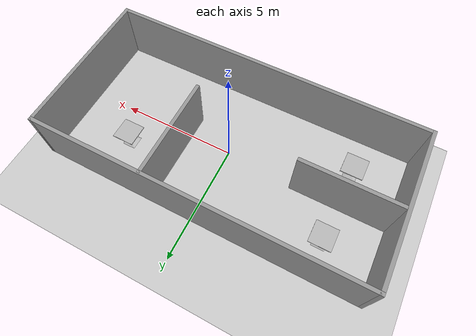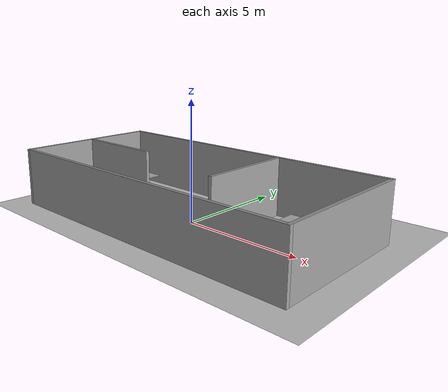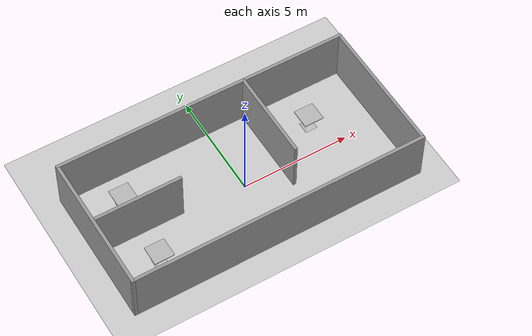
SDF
<sdf version="1.6">
 <world name="default">
  <light name="sun" type="directional">
   <pose>0 0 10 0 -0 0</pose>
   <diffuse>0.8 0.8 0.8 1</diffuse>
   <specular>0.2 0.2 0.2 1</specular>
   <attenuation>
    <range>1000</range>
    <constant>0.9</constant>
    <linear>0.01</linear>
    <quadratic>0.001</quadratic>
   </attenuation>
   <direction>-0.5 0.1 -0.9</direction>
  </light>
  <model name="ground_plane">
   <static>1</static>
   <link name="link">
    <collision name="collision">
     <geometry><plane><normal>0 0 1</normal><size>100 100</size></plane></geometry>
     <surface>
      <contact><collide_bitmask>65535</collide_bitmask></contact>
      <friction><ode><mu>100</mu><mu2>50</mu2></ode></friction>
     </surface>
    </collision>
    <visual name="visual">
     <cast_shadows>0</cast_shadows>
     <geometry><plane><normal>0 0 1</normal><size>100 100</size></plane></geometry>
     <material>
      <script><uri>file://media/materials/scripts/gazebo.material</uri><name>Gazebo/Grey</name></script>
     </material>
    </visual>
   </link>
  </model>
  <gravity>0 0 -9.8</gravity>
  <magnetic_field>6e-06 2.3e-05 -4.2e-05</magnetic_field>
  <atmosphere type="adiabatic"/>
  <physics name="default_physics" default="0" type="ode">
   <max_step_size>0.001</max_step_size>
   <real_time_factor>1</real_time_factor>
   <real_time_update_rate>1000</real_time_update_rate>
  </physics>
  <scene><ambient>0.4 0.4 0.4 1</ambient><background>0.7 0.7 0.7 1</background><shadows>1</shadows></scene>
  <spherical_coordinates>
   <surface_model>EARTH_WGS84</surface_model>
   <latitude_deg>0</latitude_deg>
   <longitude_deg>0</longitude_deg>
   <elevation>0</elevation>
   <heading_deg>0</heading_deg>
  </spherical_coordinates>
  <model name="simple_building">
   <pose>-0.126408 0.073241 0 0 -0 0</pose>
   <link name="Wall_0">
    <collision name="Wall_0_Collision">
     <geometry><box><size>13.75 0.15 2.5</size></box></geometry>
     <pose>0 0 1.25 0 -0 0</pose>
    </collision>
    <visual name="Wall_0_Visual">
     <pose>0 0 1.25 0 -0 0</pose>
     <geometry><box><size>13.75 0.15 2.5</size></box></geometry>
     <material>
      <script><uri>file://media/materials/scripts/gazebo.material</uri><name>Gazebo/Grey</name></script>
      <ambient>1 1 1 1</ambient>
     </material>
     <meta><layer>0</layer></meta>
    </visual>
    <pose>0 3.175 0 0 -0 0</pose>
   </link>
   <link name="Wall_1">
    <collision name="Wall_1_Collision">
     <geometry><box><size>6.5 0.15 2.5</size></box></geometry>
     <pose>0 0 1.25 0 -0 0</pose>
    </collision>
    <visual name="Wall_1_Visual">
     <pose>0 0 1.25 0 -0 0</pose>
     <geometry><box><size>6.5 0.15 2.5</size></box></geometry>
     <material>
      <script><uri>file://media/materials/scripts/gazebo.material</uri><name>Gazebo/Grey</name></script>
      <ambient>1 1 1 1</ambient>
     </material>
     <meta><layer>0</layer></meta>
    </visual>
    <pose>6.8 0 0 0 0 -1.5708</pose>
   </link>
   <link name="Wall_2">
    <collision name="Wall_2_Collision">
     <geometry><box><size>13.75 0.15 2.5</size></box></geometry>
     <pose>0 0 1.25 0 -0 0</pose>
    </collision>
    <visual name="Wall_2_Visual">
     <pose>0 0 1.25 0 -0 0</pose>
     <geometry><box><size>13.75 0.15 2.5</size></box></geometry>
     <material>
      <script><uri>file://media/materials/scripts/gazebo.material</uri><name>Gazebo/Grey</name></script>
      <ambient>1 1 1 1</ambient>
     </material>
     <meta><layer>0</layer></meta>
    </visual>
    <pose>0 -3.175 0 0 -0 3.14159</pose>
   </link>
   <link name="Wall_3">
    <collision name="Wall_3_Collision">
     <geometry><box><size>6.5 0.15 2.5</size></box></geometry>
     <pose>0 0 1.25 0 -0 0</pose>
    </collision>
    <visual name="Wall_3_Visual">
     <pose>0 0 1.25 0 -0 0</pose>
     <geometry><box><size>6.5 0.15 2.5</size></box></geometry>
     <material>
      <script><uri>file://media/materials/scripts/gazebo.material</uri><name>Gazebo/Grey</name></script>
      <ambient>1 1 1 1</ambient>
     </material>
     <meta><layer>0</layer></meta>
    </visual>
    <pose>-6.8 0 0 0 -0 1.5708</pose>
   </link>
   <link name="Wall_5">
    <collision name="Wall_5_Collision">
     <geometry><box><size>4 0.15 2.5</size></box></geometry>
     <pose>0 0 1.25 0 -0 0</pose>
    </collision>
    <visual name="Wall_5_Visual">
     <pose>0 0 1.25 0 -0 0</pose>
     <geometry><box><size>4 0.15 2.5</size></box></geometry>
     <material>
      <script><uri>file://media/materials/scripts/gazebo.material</uri><name>Gazebo/Grey</name></script>
      <ambient>1 1 1 1</ambient>
     </material>
     <meta><layer>0</layer></meta>
    </visual>
    <pose>-4.73421 0.137851 0 0 -0 0</pose>
   </link>
   <link name="Wall_7">
    <collision name="Wall_7_Collision">
     <geometry><box><size>4.25 0.15 2.5</size></box></geometry>
     <pose>0 0 1.25 0 -0 0</pose>
    </collision>
    <visual name="Wall_7_Visual">
     <pose>0 0 1.25 0 -0 0</pose>
     <geometry><box><size>4.25 0.15 2.5</size></box></geometry>
     <material>
      <script><uri>file://media/materials/scripts/gazebo.material</uri><name>Gazebo/Grey</name></script>
      <ambient>1 1 1 1</ambient>
     </material>
     <meta><layer>0</layer></meta>
    </visual>
    <pose>1.98963 1.08477 0 0 0 -1.5708</pose>
   </link>
   <static>1</static>
  </model>
  <model name="cafe_table">
   <static>1</static>
   <link name="link">
    <collision name="surface">
     <pose>0 0 0.755 0 -0 0</pose>
     <geometry><box><size>0.913 0.913 0.04</size></box></geometry>
    </collision>
    <collision name="column">
     <pose>0 0 0.37 0 -0 0</pose>
     <geometry><box><size>0.042 0.042 0.74</size></box></geometry>
    </collision>
    <collision name="base">
     <pose>0 0 0.02 0 -0 0</pose>
     <geometry><box><size>0.56 0.56 0.04</size></box></geometry>
    </collision>
    <visual name="visual">
     <geometry><mesh><uri>model://cafe_table/meshes/cafe_table.dae</uri></mesh></geometry>
    </visual>
   </link>
   <pose>-4.88322 -1.4401 0 0 -0 0</pose>
  </model>
  <model name="cafe_table_0">
   <static>1</static>
   <link name="link">
    <collision name="surface">
     <pose>0 0 0.755 0 -0 0</pose>
     <geometry><box><size>0.913 0.913 0.04</size></box></geometry>
    </collision>
    <collision name="column">
     <pose>0 0 0.37 0 -0 0</pose>
     <geometry><box><size>0.042 0.042 0.74</size></box></geometry>
    </collision>
    <collision name="base">
     <pose>0 0 0.02 0 -0 0</pose>
     <geometry><box><size>0.56 0.56 0.04</size></box></geometry>
    </collision>
    <visual name="visual">
     <geometry><mesh><uri>model://cafe_table/meshes/cafe_table.dae</uri></mesh></geometry>
    </visual>
   </link>
   <pose>-4.80313 1.76413 0 0 -0 0</pose>
  </model>
  <model name="cafe_table_1">
   <static>1</static>
   <link name="link">
    <collision name="surface">
     <pose>0 0 0.755 0 -0 0</pose>
     <geometry><box><size>0.913 0.913 0.04</size></box></geometry>
    </collision>
    <collision name="column">
     <pose>0 0 0.37 0 -0 0</pose>
     <geometry><box><size>0.042 0.042 0.74</size></box></geometry>
    </collision>
    <collision name="base">
     <pose>0 0 0.02 0 -0 0</pose>
     <geometry><box><size>0.56 0.56 0.04</size></box></geometry>
    </collision>
    <visual name="visual">
     <geometry><mesh><uri>model://cafe_table/meshes/cafe_table.dae</uri></mesh></geometry>
    </visual>
   </link>
   <pose>3.9904 1.36111 0 0 -0 0</pose>
  </model>
 </world>
</sdf>
